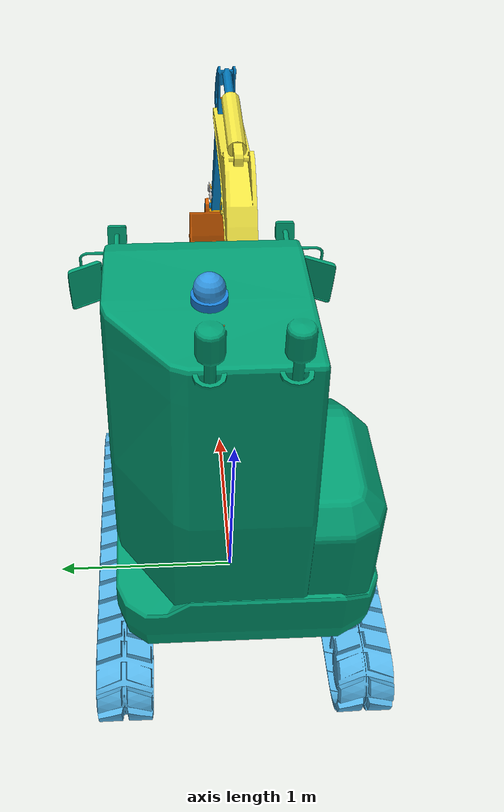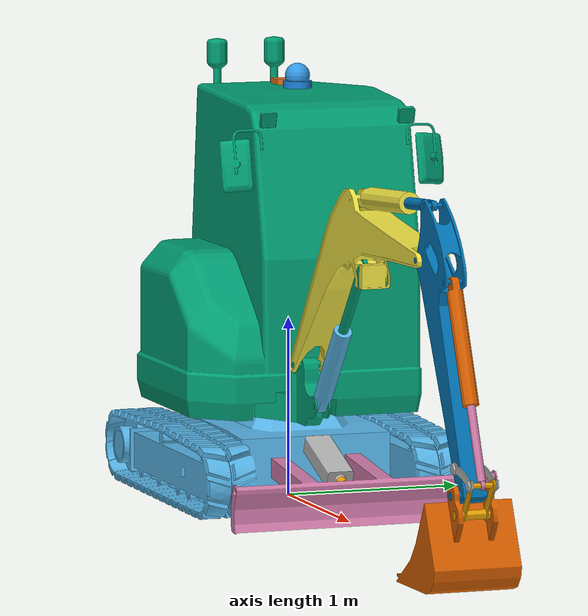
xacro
<?xml version="1.0"?>
<robot name="excavator" xmlns:xacro="http://www.ros.org/wiki/xacro">

  <!-- When true: mock_components/GenericSystem for RViz-only MoveIt (no Gazebo). -->
  <xacro:arg name="use_mock_hardware" default="false"/>
  <!-- Accepted for compatibility with launch files that pass use_sim:=...; not used. -->
  <xacro:arg name="use_sim" default="true"/>

  <xacro:property name="mesh_uri" value="package://excavator_v2_description/meshes"/>

  <!-- ===================== helper macros ===================== -->

  <xacro:macro name="mesh_link" params="name mass com ixx iyy izz collision">
    <link name="${name}">
      <inertial>
        <origin xyz="${com}" rpy="0 0 0"/>
        <mass value="${mass}"/>
        <inertia ixx="${ixx}" iyy="${iyy}" izz="${izz}" ixy="0" ixz="0" iyz="0"/>
      </inertial>
      <visual>
        <origin xyz="0 0 0" rpy="0 0 0"/>
        <geometry>
          <mesh filename="${mesh_uri}/${name}.obj"/>
        </geometry>
      </visual>
      <xacro:if value="${collision}">
        <collision>
          <origin xyz="0 0 0" rpy="0 0 0"/>
          <geometry>
            <mesh filename="${mesh_uri}/${name}.obj"/>
          </geometry>
        </collision>
      </xacro:if>
    </link>
  </xacro:macro>

  <!-- Passive pin of a cylinder or linkage part (driven by linkage_controller) -->
  <xacro:macro name="linkage_pin" params="name parent child xyz">
    <joint name="${name}" type="revolute">
      <parent link="${parent}"/>
      <child link="${child}"/>
      <origin xyz="${xyz}" rpy="0 0 0"/>
      <axis xyz="0 1 0"/>
      <dynamics damping="1.0" friction="0.0"/>
      <limit effort="2000.0" lower="-3.14159" upper="3.14159" velocity="10.0"/>
    </joint>
  </xacro:macro>

  <!-- Cylinder rod sliding in its barrel (value = extension from rest length) -->
  <xacro:macro name="cylinder_rod" params="name parent child xyz axis lower upper">
    <joint name="${name}" type="prismatic">
      <parent link="${parent}"/>
      <child link="${child}"/>
      <origin xyz="${xyz}" rpy="0 0 0"/>
      <axis xyz="${axis}"/>
      <dynamics damping="1.0" friction="0.0"/>
      <limit effort="5000.0" lower="${lower}" upper="${upper}" velocity="5.0"/>
    </joint>
  </xacro:macro>

  <!-- ===================== links ===================== -->

  <!-- Massless root -->
  <link name="base_link"/>

  <!-- BASE: undercarriage, tracks -->
  <xacro:mesh_link name="base" collision="true" mass="900.0"
                   com="-0.0999 -0.0035 0.2521" ixx="185.574" iyy="279.609" izz="427.057"/>
  <!-- BODY / TURRET: cabin, counterweight, lights, boom swing bracket -->
  <xacro:mesh_link name="body" collision="true" mass="1100.0"
                   com="0.0384 0.0668 0.9960" ixx="569.702" iyy="645.747" izz="480.438"/>
  <!-- ARM1 (boom) -->
  <xacro:mesh_link name="boom" collision="true" mass="150.0"
                   com="0.9561 -0.0001 0.5116" ixx="15.693" iyy="64.404" izz="49.601"/>
  <!-- ARM2 (stick) -->
  <xacro:mesh_link name="stick" collision="true" mass="90.0"
                   com="0.2841 -0.0016 -0.4308" ixx="17.445" iyy="20.785" izz="4.128"/>
  <!-- SHOVEL (bucket) -->
  <xacro:mesh_link name="bucket" collision="true" mass="60.0"
                   com="-0.2439 0.0002 -0.2248" ixx="2.732" iyy="4.081" izz="3.638"/>
  <!-- Dozer blade -->
  <xacro:mesh_link name="blade" collision="true" mass="70.0"
                   com="0.4249 -0.0000 -0.0828" ixx="13.480" iyy="4.776" izz="17.402"/>

  <!-- Bucket linkage and hydraulic cylinders (visual only, no collision) -->
  <xacro:mesh_link name="bucket_rocker" collision="false" mass="8.0" com="0.1170 0.0000 -0.0289" ixx="0.0286" iyy="0.0714" izz="0.0788"/>
  <xacro:mesh_link name="bucket_hlink" collision="false" mass="8.0" com="-0.0553 0.0000 -0.0852" ixx="0.0670" iyy="0.0535" izz="0.0512"/>
  <xacro:mesh_link name="boom_cyl_barrel" collision="false" mass="25.0" com="0.1861 -0.0030 0.2256" ixx="0.5939" iyy="0.9845" izz="0.4342"/>
  <xacro:mesh_link name="boom_cyl_rod" collision="false" mass="10.0" com="-0.2366 -0.0018 -0.2938" ixx="0.3335" iyy="0.5544" izz="0.2261"/>
  <xacro:mesh_link name="stick_cyl_barrel" collision="false" mass="22.0" com="0.3208 0.0001 0.0251" ixx="0.0714" iyy="1.0110" izz="0.9921"/>
  <xacro:mesh_link name="stick_cyl_rod" collision="false" mass="9.0" com="-0.3624 0.0003 -0.0272" ixx="0.0124" iyy="0.4575" izz="0.4512"/>
  <xacro:mesh_link name="bucket_cyl_barrel" collision="false" mass="18.0" com="0.1312 0.0005 -0.2989" ixx="0.6465" iyy="0.7956" izz="0.1715"/>
  <xacro:mesh_link name="bucket_cyl_rod" collision="false" mass="7.0" com="-0.1345 0.0013 0.3126" ixx="0.2615" iyy="0.3162" izz="0.0572"/>
  <xacro:mesh_link name="blade_cyl_barrel" collision="false" mass="12.0" com="0.1899 0.0002 -0.0728" ixx="0.0813" iyy="0.2338" izz="0.1968"/>
  <xacro:mesh_link name="blade_cyl_rod" collision="false" mass="5.0" com="-0.1172 0.0014 0.0487" ixx="0.0101" iyy="0.0417" izz="0.0345"/>

  <!-- Sensor links (IMU and 3D LiDAR on the cab roof) - visible physical sensor geometry -->
  <link name="sensor_imu_link">
    <inertial>
      <mass value="0.02"/>
      <origin xyz="0 0 0"/>
      <inertia ixx="1e-5" iyy="1e-5" izz="1e-5" ixy="0" ixz="0" iyz="0"/>
    </inertial>
    <visual name="imu_visual">
      <geometry><box size="0.12 0.10 0.03"/></geometry>
      <origin xyz="0 0 0"/>
      <material name="imu_material">
        <color rgba="0.9 0.45 0.1 1"/>
      </material>
    </visual>
    <collision name="imu_collision">
      <geometry><box size="0.12 0.10 0.03"/></geometry>
      <origin xyz="0 0 0"/>
    </collision>
  </link>
  <link name="sensor_lidar_link">
    <inertial>
      <mass value="0.05"/>
      <origin xyz="0 0 0"/>
      <inertia ixx="1e-4" iyy="1e-4" izz="1e-4" ixy="0" ixz="0" iyz="0"/>
    </inertial>
    <visual name="lidar_base">
      <geometry><cylinder radius="0.08" length="0.04"/></geometry>
      <origin xyz="0 0 0" rpy="0 0 3.14159"/>
      <material name="lidar_base_material">
        <color rgba="0.1 0.5 0.85 1"/>
      </material>
    </visual>
    <visual name="lidar_dome">
      <geometry><sphere radius="0.07"/></geometry>
      <origin xyz="0 0 0.05" rpy="0 0 0"/>
      <material name="lidar_dome_material">
        <color rgba="0.2 0.6 0.9 0.95"/>
      </material>
    </visual>
    <collision name="lidar_collision">
      <geometry><cylinder radius="0.08" length="0.12"/></geometry>
      <origin xyz="0 0 0.04" rpy="0 0 0"/>
    </collision>
  </link>

  <!-- ===================== actuated joints ===================== -->

  <!-- Fixed joint between base_link (root) and base. No 180 deg yaw any more: +X is forward. -->
  <joint name="base_to_base_link" type="fixed">
    <parent link="base_link"/>
    <child link="base"/>
    <origin xyz="0 0 0" rpy="0 0 0"/>
  </joint>

  <joint name="body_rotation" type="revolute">
    <parent link="base"/>
    <child link="body"/>
    <axis xyz="0 0 1"/>
    <origin xyz="0.000000 0.000000 0.504155"/>
    <dynamics damping="8.0" friction="0.5"/>
    <limit effort="20000.0" lower="-12.566370614359172" upper="12.566370614359172" velocity="1.5"/>
  </joint>

  <!-- Limits from cylinder stroke and lever arm (see README). negative = boom up -->
  <joint name="boom_rotation" type="revolute">
    <parent link="body"/>
    <child link="boom"/>
    <axis xyz="0 1 0"/>
    <origin xyz="0.656365 -0.119281 0.323714"/>
    <dynamics damping="10.0" friction="1.5"/>
    <limit effort="40000.0" lower="-0.598" upper="1.037" velocity="1.0"/>
  </joint>

  <!-- negative = stick out, positive = stick in -->
  <joint name="stick_rotation" type="revolute">
    <parent link="boom"/>
    <child link="stick"/>
    <axis xyz="0 1 0"/>
    <origin xyz="1.902815 -0.000264 0.797877"/>
    <dynamics damping="8.0" friction="1.2"/>
    <limit effort="25000.0" lower="-0.878" upper="1.047" velocity="1.0"/>
  </joint>

  <!-- negative = dump (open), positive = curl (close) -->
  <joint name="bucket_rotation" type="revolute">
    <parent link="stick"/>
    <child link="bucket"/>
    <axis xyz="0 1 0"/>
    <origin xyz="0.593054 -0.001579 -1.143821"/>
    <dynamics damping="6.0" friction="0.8"/>
    <limit effort="12000.0" lower="-1.944" upper="1.29" velocity="1.2"/>
  </joint>

  <!-- negative = blade up, positive = blade down -->
  <joint name="blade_rotation" type="revolute">
    <parent link="base"/>
    <child link="blade"/>
    <axis xyz="0 1 0"/>
    <origin xyz="0.445848 -0.003957 0.237288"/>
    <dynamics damping="8.0" friction="1.0"/>
    <limit effort="15000.0" lower="-0.349" upper="0.401" velocity="0.5"/>
  </joint>

  <!-- ===================== passive joints (linkage_controller) ===================== -->

  <!-- Bucket four-bar: rocker on the stick, H-link from rocker tip to bucket -->
  <xacro:linkage_pin name="bucket_rocker_joint" parent="stick" child="bucket_rocker" xyz="0.533786 -0.000680 -1.012250"/>
  <xacro:linkage_pin name="bucket_hlink_joint" parent="bucket_rocker" child="bucket_hlink" xyz="0.214502 -0.000000 -0.058659"/>

  <!-- Boom cylinder: barrel on body, rod pin on boom -->
  <xacro:linkage_pin name="boom_cyl_barrel_joint" parent="body" child="boom_cyl_barrel" xyz="0.860909 -0.117193 0.124177"/>
  <xacro:cylinder_rod name="boom_cyl_rod_joint" parent="boom_cyl_barrel" child="boom_cyl_rod" xyz="0.693968 -0.001478 0.861305"
                      axis="0.6274 0.0000 0.7787" lower="-0.2971" upper="0.1599"/>

  <!-- Stick cylinder: barrel on boom, rod pin on stick -->
  <xacro:linkage_pin name="stick_cyl_barrel_joint" parent="boom" child="stick_cyl_barrel" xyz="0.904857 -0.000101 1.014838"/>
  <xacro:cylinder_rod name="stick_cyl_rod_joint" parent="stick_cyl_barrel" child="stick_cyl_rod" xyz="1.036693 -0.000164 0.068846"
                      axis="0.9978 0.0000 0.0663" lower="-0.2400" upper="0.3110"/>

  <!-- Bucket cylinder: barrel on stick, rod pin on rocker tip -->
  <xacro:linkage_pin name="bucket_cyl_barrel_joint" parent="stick" child="bucket_cyl_barrel" xyz="0.330689 -0.000000 -0.076154"/>
  <xacro:cylinder_rod name="bucket_cyl_rod_joint" parent="bucket_cyl_barrel" child="bucket_cyl_rod" xyz="0.417599 -0.000680 -0.994755"
                      axis="0.3871 0.0000 -0.9220" lower="-0.3369" upper="0.1921"/>

  <!-- Blade cylinder: barrel on base, rod pin on blade -->
  <xacro:linkage_pin name="blade_cyl_barrel_joint" parent="base" child="blade_cyl_barrel" xyz="0.483991 -0.003561 0.357394"/>
  <xacro:cylinder_rod name="blade_cyl_rod_joint" parent="blade_cyl_barrel" child="blade_cyl_rod" xyz="0.458794 -0.000518 -0.175416"
                      axis="0.9341 0.0000 -0.3571" lower="-0.1762" upper="0.1098"/>

  <!-- Body -> sensor links (fixed, on the cab roof) -->
  <joint name="body_to_imu" type="fixed">
    <parent link="body"/>
    <child link="sensor_imu_link"/>
    <origin xyz="-0.5500 0.1600 1.7620" rpy="0 0 0"/>
  </joint>
  <joint name="body_to_lidar" type="fixed">
    <parent link="body"/>
    <child link="sensor_lidar_link"/>
    <origin xyz="-0.3000 0.1600 1.7670" rpy="0 0 0"/>
  </joint>

  <!-- ===================== ros2_control ===================== -->

  <xacro:macro name="position_joint" params="name initial:=0.0">
    <joint name="${name}">
      <command_interface name="position"/>
      <state_interface name="position">
        <param name="initial_value">${initial}</param>
      </state_interface>
      <state_interface name="velocity"/>
    </joint>
  </xacro:macro>

  <!-- All joints start at 0 (the rig rest pose). 0 is inside every limit and the
       linkage initial values are consistent with it. -->
  <xacro:macro name="excavator_ros2_control_joints">
    <!-- actuated -->
    <xacro:position_joint name="body_rotation"/>
    <xacro:position_joint name="boom_rotation"/>
    <xacro:position_joint name="stick_rotation"/>
    <xacro:position_joint name="bucket_rotation"/>
    <xacro:position_joint name="blade_rotation"/>
    <!-- passive linkage (linkage_controller) -->
    <xacro:position_joint name="boom_cyl_barrel_joint"/>
    <xacro:position_joint name="boom_cyl_rod_joint"/>
    <xacro:position_joint name="stick_cyl_barrel_joint"/>
    <xacro:position_joint name="stick_cyl_rod_joint"/>
    <xacro:position_joint name="bucket_rocker_joint"/>
    <xacro:position_joint name="bucket_hlink_joint"/>
    <xacro:position_joint name="bucket_cyl_barrel_joint"/>
    <xacro:position_joint name="bucket_cyl_rod_joint"/>
    <xacro:position_joint name="blade_cyl_barrel_joint"/>
    <xacro:position_joint name="blade_cyl_rod_joint"/>
  </xacro:macro>

  <xacro:unless value="$(arg use_mock_hardware)">
    <ros2_control name="GazeboSimSystem" type="system">
      <hardware>
        <plugin>gz_ros2_control/GazeboSimSystem</plugin>
      </hardware>
      <xacro:excavator_ros2_control_joints/>
    </ros2_control>
    <gazebo>
      <plugin filename="libgz_ros2_control-system.so"
              name="gz_ros2_control::GazeboSimROS2ControlPlugin">
        <parameters>$(find excavator_v2_description)/config/controllers.yaml</parameters>
        <!-- faster tracking of position commands (default 0.1) -->
        <position_proportional_gain>0.3</position_proportional_gain>
      </plugin>
    </gazebo>
  </xacro:unless>

  <xacro:if value="$(arg use_mock_hardware)">
    <ros2_control name="MockHardwareSystem" type="system">
      <hardware>
        <plugin>mock_components/GenericSystem</plugin>
        <param name="mock_sensor_commands">false</param>
        <param name="position_state_following_offset">0.0</param>
      </hardware>
      <xacro:excavator_ros2_control_joints/>
    </ros2_control>
  </xacro:if>

  <!-- IMU sensor (Gazebo Harmonic); orange so visible in sim -->
  <gazebo reference="sensor_imu_link">
    <material>Gazebo/Orange</material>
    <sensor name="imu_sensor" type="imu">
      <always_on>true</always_on>
      <update_rate>100</update_rate>
      <visualize>true</visualize>
      <topic>/excavator/imu</topic>
      <gz_frame_id>sensor_imu_link</gz_frame_id>
      <imu>
        <angular_velocity>
          <x><noise type="gaussian"><mean>0.0</mean><stddev>0.0002</stddev></noise></x>
          <y><noise type="gaussian"><mean>0.0</mean><stddev>0.0002</stddev></noise></y>
          <z><noise type="gaussian"><mean>0.0</mean><stddev>0.0002</stddev></noise></z>
        </angular_velocity>
        <linear_acceleration>
          <x><noise type="gaussian"><mean>0.0</mean><stddev>0.017</stddev></noise></x>
          <y><noise type="gaussian"><mean>0.0</mean><stddev>0.017</stddev></noise></y>
          <z><noise type="gaussian"><mean>0.0</mean><stddev>0.017</stddev></noise></z>
        </linear_acceleration>
      </imu>
    </sensor>
  </gazebo>

  <!-- 3D LiDAR sensor (gpu_lidar, Gazebo Harmonic); blue so visible in sim -->
  <gazebo reference="sensor_lidar_link">
    <material>Gazebo/Blue</material>
    <sensor name="lidar_sensor" type="gpu_lidar">
      <always_on>true</always_on>
      <update_rate>10</update_rate>
      <visualize>true</visualize>
      <topic>/excavator/points</topic>
      <gz_frame_id>sensor_lidar_link</gz_frame_id>
      <lidar>
        <scan>
          <horizontal>
            <samples>360</samples>
            <resolution>1.0</resolution>
            <min_angle>-3.14159265</min_angle>
            <max_angle>3.14159265</max_angle>
          </horizontal>
          <vertical>
            <samples>32</samples>
            <resolution>1.0</resolution>
            <min_angle>-0.261799</min_angle>
            <max_angle>0.261799</max_angle>
          </vertical>
        </scan>
        <range>
          <min>0.2</min>
          <max>30.0</max>
          <resolution>0.01</resolution>
        </range>
      </lidar>
    </sensor>
  </gazebo>

</robot>
